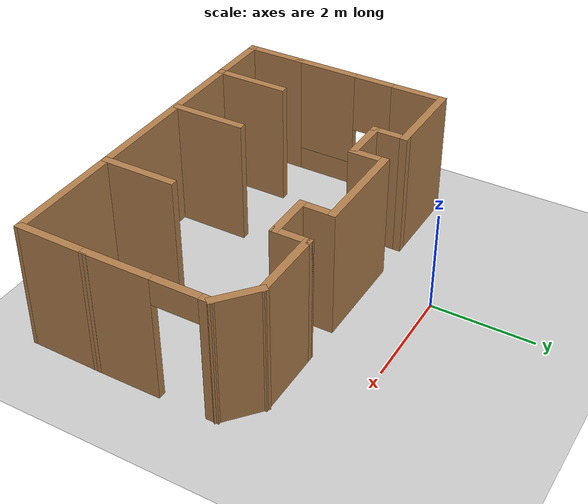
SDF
<sdf version="1.7">
 <world name="default">
  <light name="sun" type="directional">
   <pose>0 0 10 0 -0 0</pose>
   <diffuse>0.8 0.8 0.8 1</diffuse>
   <specular>0.2 0.2 0.2 1</specular>
   <attenuation>
    <range>1000</range>
    <constant>0.9</constant>
    <linear>0.01</linear>
    <quadratic>0.001</quadratic>
   </attenuation>
   <direction>-0.5 0.1 -0.9</direction>
   <spot><inner_angle>0</inner_angle><outer_angle>0</outer_angle><falloff>0</falloff></spot>
  </light>
  <model name="ground_plane">
   <static>1</static>
   <link name="link">
    <collision name="collision">
     <geometry><plane><normal>0 0 1</normal><size>100 100</size></plane></geometry>
     <surface>
      <contact><collide_bitmask>65535</collide_bitmask></contact>
      <friction><ode><mu>100</mu><mu2>50</mu2></ode></friction>
     </surface>
    </collision>
    <visual name="visual">
     <cast_shadows>0</cast_shadows>
     <geometry><plane><normal>0 0 1</normal><size>100 100</size></plane></geometry>
     <material>
      <script><uri>file://media/materials/scripts/gazebo.material</uri><name>Gazebo/Grey</name></script>
     </material>
    </visual>
   </link>
  </model>
  <gravity>0 0 -9.8</gravity>
  <magnetic_field>6e-06 2.3e-05 -4.2e-05</magnetic_field>
  <atmosphere type="adiabatic"/>
  <physics type="ode">
   <max_step_size>0.001</max_step_size>
   <real_time_factor>1</real_time_factor>
   <real_time_update_rate>1000</real_time_update_rate>
  </physics>
  <scene><ambient>0.4 0.4 0.4 1</ambient><background>0.7 0.7 0.7 1</background><shadows>1</shadows></scene>
  <spherical_coordinates>
   <surface_model>EARTH_WGS84</surface_model>
   <latitude_deg>0</latitude_deg>
   <longitude_deg>0</longitude_deg>
   <elevation>0</elevation>
   <heading_deg>0</heading_deg>
  </spherical_coordinates>
  <model name="room1">
   <pose>0.72533 -2.76806 0 0 -0 0</pose>
   <link name="Wall_10">
    <collision name="Wall_10_Collision">
     <geometry><box><size>0.75 0.15 2.5</size></box></geometry>
     <pose>0 0 1.25 0 -0 0</pose>
    </collision>
    <visual name="Wall_10_Visual">
     <pose>0 0 1.25 0 -0 0</pose>
     <geometry><box><size>0.75 0.15 2.5</size></box></geometry>
     <material>
      <script><uri>file://media/materials/scripts/gazebo.material</uri><name>Gazebo/Wood</name></script>
      <ambient>1 1 1 1</ambient>
     </material>
     <meta><layer>0</layer></meta>
    </visual>
    <pose>1.57467 1.20806 0 0 -0 1.5708</pose>
   </link>
   <link name="Wall_12">
    <pose>3.54467 -0.18694 0 0 -0 -1.5708</pose>
    <visual name="Wall_12_Visual_0">
     <pose>-1.1225 0 1.25 0 -0 0</pose>
     <geometry><box><size>0.255 0.15 2.5</size></box></geometry>
     <material>
      <script><uri>file://media/materials/scripts/gazebo.material</uri><name>Gazebo/Wood</name></script>
      <ambient>1 1 1 1</ambient>
     </material>
     <meta><layer>0</layer></meta>
    </visual>
    <collision name="Wall_12_Collision_0">
     <geometry><box><size>0.255 0.15 2.5</size></box></geometry>
     <pose>-1.1225 0 1.25 0 -0 0</pose>
    </collision>
    <visual name="Wall_12_Visual_1">
     <pose>0.5775 0 1.25 0 -0 0</pose>
     <geometry><box><size>1.345 0.15 2.5</size></box></geometry>
     <material>
      <script><uri>file://media/materials/scripts/gazebo.material</uri><name>Gazebo/Wood</name></script>
      <ambient>1 1 1 1</ambient>
     </material>
     <meta><layer>0</layer></meta>
    </visual>
    <collision name="Wall_12_Collision_1">
     <geometry><box><size>1.345 0.15 2.5</size></box></geometry>
     <pose>0.5775 0 1.25 0 -0 0</pose>
    </collision>
    <visual name="Wall_12_Visual_2">
     <pose>-0.545 0 2.25 0 -0 0</pose>
     <geometry><box><size>0.9 0.15 0.5</size></box></geometry>
     <material>
      <script><uri>file://media/materials/scripts/gazebo.material</uri><name>Gazebo/Wood</name></script>
      <ambient>1 1 1 1</ambient>
     </material>
     <meta><layer>0</layer></meta>
    </visual>
    <collision name="Wall_12_Collision_2">
     <geometry><box><size>0.9 0.15 0.5</size></box></geometry>
     <pose>-0.545 0 2.25 0 -0 0</pose>
    </collision>
   </link>
   <link name="Wall_24">
    <collision name="Wall_24_Collision">
     <geometry><box><size>1.5 0.15 2.5</size></box></geometry>
     <pose>0 0 1.25 0 -0 0</pose>
    </collision>
    <visual name="Wall_24_Visual">
     <pose>0 0 1.25 0 -0 0</pose>
     <geometry><box><size>1.5 0.15 2.5</size></box></geometry>
     <material>
      <script><uri>file://media/materials/scripts/gazebo.material</uri><name>Gazebo/Wood</name></script>
      <ambient>1 1 1 1</ambient>
     </material>
     <meta><layer>0</layer></meta>
    </visual>
    <pose>2.24967 1.50806 0 0 -0 0</pose>
   </link>
   <link name="Wall_25">
    <collision name="Wall_25_Collision">
     <geometry><box><size>0.959197 0.15 2.5</size></box></geometry>
     <pose>0 0 1.25 0 -0 0</pose>
    </collision>
    <visual name="Wall_25_Visual">
     <pose>0 0 1.25 0 -0 0</pose>
     <geometry><box><size>0.959197 0.15 2.5</size></box></geometry>
     <material>
      <script><uri>file://media/materials/scripts/gazebo.material</uri><name>Gazebo/Wood</name></script>
      <ambient>1 1 1 1</ambient>
     </material>
     <meta><layer>0</layer></meta>
    </visual>
    <pose>3.23467 1.24806 0 0 -0 -0.697903</pose>
   </link>
   <link name="Wall_29">
    <collision name="Wall_29_Collision">
     <geometry><box><size>0.75 0.15 2.5</size></box></geometry>
     <pose>0 0 1.25 0 -0 0</pose>
    </collision>
    <visual name="Wall_29_Visual">
     <pose>0 0 1.25 0 -0 0</pose>
     <geometry><box><size>0.75 0.15 2.5</size></box></geometry>
     <material>
      <script><uri>file://media/materials/scripts/gazebo.material</uri><name>Gazebo/Wood</name></script>
      <ambient>1 1 1 1</ambient>
     </material>
     <meta><layer>0</layer></meta>
    </visual>
    <pose>-1.97533 1.20806 0 0 -0 1.5708</pose>
   </link>
   <link name="Wall_3">
    <collision name="Wall_3_Collision">
     <geometry><box><size>1 0.15 2.5</size></box></geometry>
     <pose>0 0 1.25 0 -0 0</pose>
    </collision>
    <visual name="Wall_3_Visual">
     <pose>0 0 1.25 0 -0 0</pose>
     <geometry><box><size>1 0.15 2.5</size></box></geometry>
     <material>
      <script><uri>file://media/materials/scripts/gazebo.material</uri><name>Gazebo/Wood</name></script>
      <ambient>1 1 1 1</ambient>
     </material>
     <meta><layer>0</layer></meta>
    </visual>
    <pose>-1.55033 0.90806 0 0 -0 0</pose>
   </link>
   <link name="Wall_30">
    <collision name="Wall_30_Collision">
     <geometry><box><size>1.75 0.15 2.5</size></box></geometry>
     <pose>0 0 1.25 0 -0 0</pose>
    </collision>
    <visual name="Wall_30_Visual">
     <pose>0 0 1.25 0 -0 0</pose>
     <geometry><box><size>1.75 0.15 2.5</size></box></geometry>
     <material>
      <script><uri>file://media/materials/scripts/gazebo.material</uri><name>Gazebo/Wood</name></script>
      <ambient>1 1 1 1</ambient>
     </material>
     <meta><layer>0</layer></meta>
    </visual>
    <pose>-2.77533 1.50806 0 0 -0 3.14159</pose>
   </link>
   <link name="Wall_31">
    <pose>-3.57533 -0.04194 0 0 -0 -1.5708</pose>
    <visual name="Wall_31_Visual_0">
     <pose>-1.07526 0 1.25 0 -0 0</pose>
     <geometry><box><size>1.09947 0.15 2.5</size></box></geometry>
     <material>
      <script><uri>file://media/materials/scripts/gazebo.material</uri><name>Gazebo/Wood</name></script>
      <ambient>1 1 1 1</ambient>
     </material>
     <meta><layer>0</layer></meta>
    </visual>
    <collision name="Wall_31_Collision_0">
     <geometry><box><size>1.09947 0.15 2.5</size></box></geometry>
     <pose>-1.07526 0 1.25 0 -0 0</pose>
    </collision>
    <visual name="Wall_31_Visual_1">
     <pose>0.549737 0 0.25 0 -0 0</pose>
     <geometry><box><size>2.15053 0.15 0.5</size></box></geometry>
     <material>
      <script><uri>file://media/materials/scripts/gazebo.material</uri><name>Gazebo/Wood</name></script>
      <ambient>1 1 1 1</ambient>
     </material>
     <meta><layer>0</layer></meta>
    </visual>
    <collision name="Wall_31_Collision_1">
     <geometry><box><size>2.15053 0.15 0.5</size></box></geometry>
     <pose>0.549737 0 0.25 0 -0 0</pose>
    </collision>
    <visual name="Wall_31_Visual_2">
     <pose>0.949737 0 1.5 0 -0 0</pose>
     <geometry><box><size>1.35053 0.15 2</size></box></geometry>
     <material>
      <script><uri>file://media/materials/scripts/gazebo.material</uri><name>Gazebo/Wood</name></script>
      <ambient>1 1 1 1</ambient>
     </material>
     <meta><layer>0</layer></meta>
    </visual>
    <collision name="Wall_31_Collision_2">
     <geometry><box><size>1.35053 0.15 2</size></box></geometry>
     <pose>0.949737 0 1.5 0 -0 0</pose>
    </collision>
    <visual name="Wall_31_Visual_3">
     <pose>-0.125527 0 1.9 0 -0 0</pose>
     <geometry><box><size>0.8 0.15 1.2</size></box></geometry>
     <material>
      <script><uri>file://media/materials/scripts/gazebo.material</uri><name>Gazebo/Wood</name></script>
      <ambient>1 1 1 1</ambient>
     </material>
     <meta><layer>0</layer></meta>
    </visual>
    <collision name="Wall_31_Collision_3">
     <geometry><box><size>0.8 0.15 1.2</size></box></geometry>
     <pose>-0.125527 0 1.9 0 -0 0</pose>
    </collision>
   </link>
   <link name="Wall_33">
    <collision name="Wall_33_Collision">
     <geometry><box><size>1.25 0.15 2.5</size></box></geometry>
     <pose>0 0 1.25 0 -0 0</pose>
    </collision>
    <visual name="Wall_33_Visual">
     <pose>0 0 1.25 0 -0 0</pose>
     <geometry><box><size>1.25 0.15 2.5</size></box></geometry>
     <material>
      <script><uri>file://media/materials/scripts/gazebo.material</uri><name>Gazebo/Wood</name></script>
      <ambient>1 1 1 1</ambient>
     </material>
     <meta><layer>0</layer></meta>
    </visual>
    <pose>-3.57533 -2.14194 0 0 -0 -1.5708</pose>
   </link>
   <link name="Wall_34">
    <collision name="Wall_34_Collision">
     <geometry><box><size>7.25 0.15 2.5</size></box></geometry>
     <pose>0 0 1.25 0 -0 0</pose>
    </collision>
    <visual name="Wall_34_Visual">
     <pose>0 0 1.25 0 -0 0</pose>
     <geometry><box><size>7.25 0.15 2.5</size></box></geometry>
     <material>
      <script><uri>file://media/materials/scripts/gazebo.material</uri><name>Gazebo/Wood</name></script>
      <ambient>1 1 1 1</ambient>
     </material>
     <meta><layer>0</layer></meta>
    </visual>
    <pose>-0.02533 -2.69194 0 0 -0 0</pose>
   </link>
   <link name="Wall_35">
    <collision name="Wall_35_Collision">
     <geometry><box><size>1.48015 0.15 2.5</size></box></geometry>
     <pose>0 0 1.25 0 -0 0</pose>
    </collision>
    <visual name="Wall_35_Visual">
     <pose>0 0 1.25 0 -0 0</pose>
     <geometry><box><size>1.48015 0.15 2.5</size></box></geometry>
     <material>
      <script><uri>file://media/materials/scripts/gazebo.material</uri><name>Gazebo/Wood</name></script>
      <ambient>1 1 1 1</ambient>
     </material>
     <meta><layer>0</layer></meta>
    </visual>
    <pose>3.53467 -2.02694 0 0 -0 1.55576</pose>
   </link>
   <link name="Wall_37">
    <collision name="Wall_37_Collision">
     <geometry><box><size>1.5 0.15 2.5</size></box></geometry>
     <pose>0 0 1.25 0 -0 0</pose>
    </collision>
    <visual name="Wall_37_Visual">
     <pose>0 0 1.25 0 -0 0</pose>
     <geometry><box><size>1.5 0.15 2.5</size></box></geometry>
     <material>
      <script><uri>file://media/materials/scripts/gazebo.material</uri><name>Gazebo/Wood</name></script>
      <ambient>1 1 1 1</ambient>
     </material>
     <meta><layer>0</layer></meta>
    </visual>
    <pose>-2.39688 -2.00298 0 0 -0 1.5708</pose>
   </link>
   <link name="Wall_39">
    <collision name="Wall_39_Collision">
     <geometry><box><size>1.5 0.15 2.5</size></box></geometry>
     <pose>0 0 1.25 0 -0 0</pose>
    </collision>
    <visual name="Wall_39_Visual">
     <pose>0 0 1.25 0 -0 0</pose>
     <geometry><box><size>1.5 0.15 2.5</size></box></geometry>
     <material>
      <script><uri>file://media/materials/scripts/gazebo.material</uri><name>Gazebo/Wood</name></script>
      <ambient>1 1 1 1</ambient>
     </material>
     <meta><layer>0</layer></meta>
    </visual>
    <pose>-0.845145 -1.97668 0 0 -0 1.5708</pose>
   </link>
   <link name="Wall_4">
    <collision name="Wall_4_Collision">
     <geometry><box><size>0.75 0.15 2.5</size></box></geometry>
     <pose>0 0 1.25 0 -0 0</pose>
    </collision>
    <visual name="Wall_4_Visual">
     <pose>0 0 1.25 0 -0 0</pose>
     <geometry><box><size>0.75 0.15 2.5</size></box></geometry>
     <material>
      <script><uri>file://media/materials/scripts/gazebo.material</uri><name>Gazebo/Wood</name></script>
      <ambient>1 1 1 1</ambient>
     </material>
     <meta><layer>0</layer></meta>
    </visual>
    <pose>-1.12533 1.20806 0 0 -0 1.5708</pose>
   </link>
   <link name="Wall_41">
    <collision name="Wall_41_Collision">
     <geometry><box><size>1.5 0.15 2.5</size></box></geometry>
     <pose>0 0 1.25 0 -0 0</pose>
    </collision>
    <visual name="Wall_41_Visual">
     <pose>0 0 1.25 0 -0 0</pose>
     <geometry><box><size>1.5 0.15 2.5</size></box></geometry>
     <material>
      <script><uri>file://media/materials/scripts/gazebo.material</uri><name>Gazebo/Wood</name></script>
      <ambient>1 1 1 1</ambient>
     </material>
     <meta><layer>0</layer></meta>
    </visual>
    <pose>1.28521 -2.00298 0 0 -0 1.5708</pose>
   </link>
   <link name="Wall_5">
    <collision name="Wall_5_Collision">
     <geometry><box><size>2 0.15 2.5</size></box></geometry>
     <pose>0 0 1.25 0 -0 0</pose>
    </collision>
    <visual name="Wall_5_Visual">
     <pose>0 0 1.25 0 -0 0</pose>
     <geometry><box><size>2 0.15 2.5</size></box></geometry>
     <material>
      <script><uri>file://media/materials/scripts/gazebo.material</uri><name>Gazebo/Wood</name></script>
      <ambient>1 1 1 1</ambient>
     </material>
     <meta><layer>0</layer></meta>
    </visual>
    <pose>-0.20033 1.50806 0 0 -0 0</pose>
   </link>
   <link name="Wall_8">
    <collision name="Wall_8_Collision">
     <geometry><box><size>0.75 0.15 2.5</size></box></geometry>
     <pose>0 0 1.25 0 -0 0</pose>
    </collision>
    <visual name="Wall_8_Visual">
     <pose>0 0 1.25 0 -0 0</pose>
     <geometry><box><size>0.75 0.15 2.5</size></box></geometry>
     <material>
      <script><uri>file://media/materials/scripts/gazebo.material</uri><name>Gazebo/Wood</name></script>
      <ambient>1 1 1 1</ambient>
     </material>
     <meta><layer>0</layer></meta>
    </visual>
    <pose>0.72467 1.20806 0 0 -0 -1.5708</pose>
   </link>
   <link name="Wall_9">
    <collision name="Wall_9_Collision">
     <geometry><box><size>1 0.15 2.5</size></box></geometry>
     <pose>0 0 1.25 0 -0 0</pose>
    </collision>
    <visual name="Wall_9_Visual">
     <pose>0 0 1.25 0 -0 0</pose>
     <geometry><box><size>1 0.15 2.5</size></box></geometry>
     <material>
      <script><uri>file://media/materials/scripts/gazebo.material</uri><name>Gazebo/Wood</name></script>
      <ambient>1 1 1 1</ambient>
     </material>
     <meta><layer>0</layer></meta>
    </visual>
    <pose>1.14967 0.90806 0 0 -0 0</pose>
   </link>
   <static>1</static>
  </model>
  <light name="sun" type="directional">
   <pose>7.3526 -7.30383 10 0 -0 0</pose>
   <diffuse>0.8 0.8 0.8 1</diffuse>
   <specular>0.2 0.2 0.2 1</specular>
   <attenuation>
    <range>1000</range>
    <constant>0.9</constant>
    <linear>0.01</linear>
    <quadratic>0.001</quadratic>
   </attenuation>
   <direction>-0.5 0.1 -0.9</direction>
  </light>
 </world>
</sdf>
